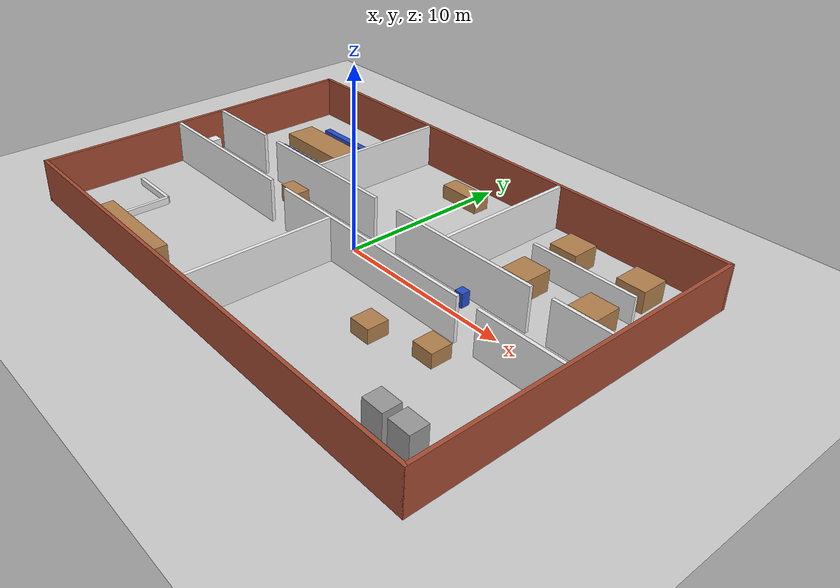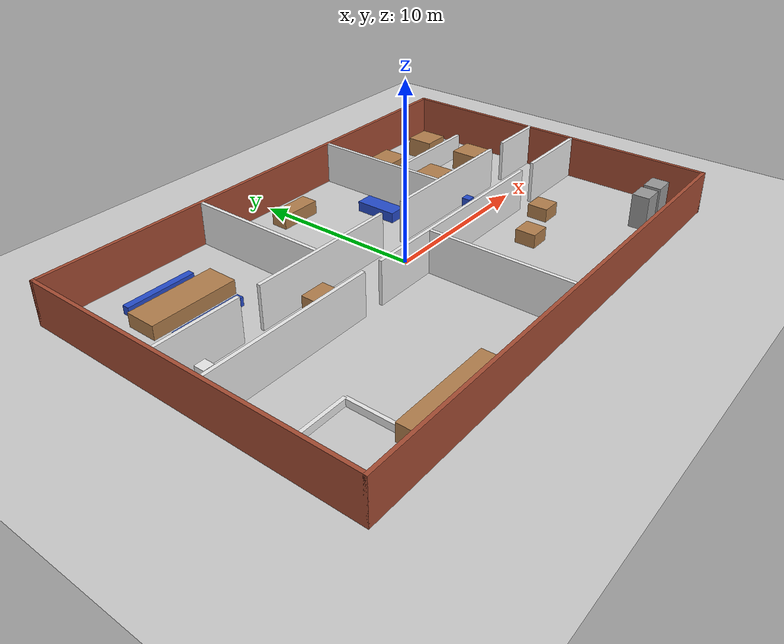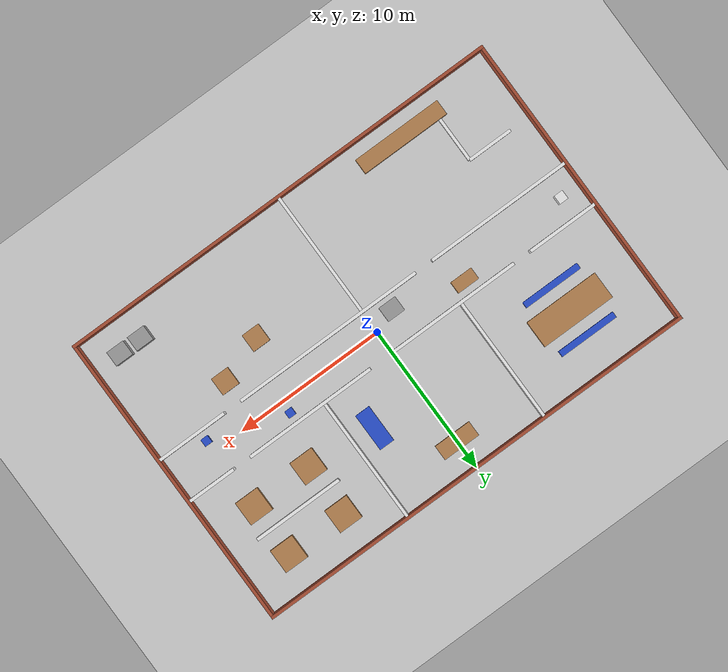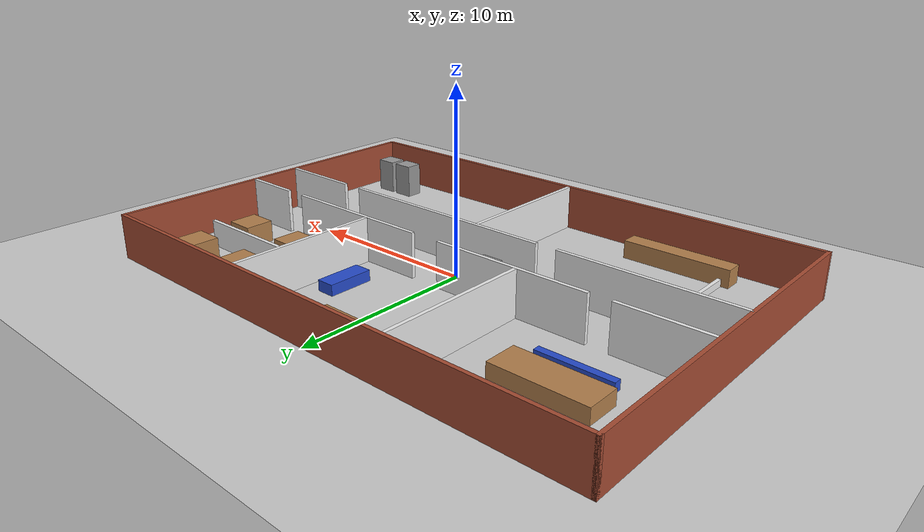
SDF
<?xml version="1.0" ?>
<sdf version="1.6">
  <world name="office_30x20_world">
    <include><uri>model://sun</uri></include>
    <include><uri>model://ground_plane</uri></include>
    <model name="office_building">
      <pose>0 0 0 0 0 0</pose>
      <static>true</static>
      <link name="obj_0">
        <pose>0.000 9.900 1.250 0 0 0</pose>
        <collision name="col_0"><geometry><box><size>30.000 0.200 2.500</size></box></geometry></collision>
        <visual name="vis_0"><geometry><box><size>30.000 0.200 2.500</size></box></geometry><material><script><name>Gazebo/Bricks</name></script></material></visual>
      </link>
      <link name="obj_1">
        <pose>0.000 -9.900 1.250 0 0 0</pose>
        <collision name="col_1"><geometry><box><size>30.000 0.200 2.500</size></box></geometry></collision>
        <visual name="vis_1"><geometry><box><size>30.000 0.200 2.500</size></box></geometry><material><script><name>Gazebo/Bricks</name></script></material></visual>
      </link>
      <link name="obj_2">
        <pose>-14.900 0.000 1.250 0 0 0</pose>
        <collision name="col_2"><geometry><box><size>0.200 20.000 2.500</size></box></geometry></collision>
        <visual name="vis_2"><geometry><box><size>0.200 20.000 2.500</size></box></geometry><material><script><name>Gazebo/Bricks</name></script></material></visual>
      </link>
      <link name="obj_3">
        <pose>14.900 0.000 1.250 0 0 0</pose>
        <collision name="col_3"><geometry><box><size>0.200 20.000 2.500</size></box></geometry></collision>
        <visual name="vis_3"><geometry><box><size>0.200 20.000 2.500</size></box></geometry><material><script><name>Gazebo/Bricks</name></script></material></visual>
      </link>
      <link name="obj_4">
        <pose>-12.500 1.500 1.250 0 0 0</pose>
        <collision name="col_4"><geometry><box><size>4.800 0.200 2.500</size></box></geometry></collision>
        <visual name="vis_4"><geometry><box><size>4.800 0.200 2.500</size></box></geometry><material><script><name>Gazebo/White</name></script></material></visual>
      </link>
      <link name="obj_5">
        <pose>-4.500 1.500 1.250 0 0 0</pose>
        <collision name="col_5"><geometry><box><size>8.800 0.200 2.500</size></box></geometry></collision>
        <visual name="vis_5"><geometry><box><size>8.800 0.200 2.500</size></box></geometry><material><script><name>Gazebo/White</name></script></material></visual>
      </link>
      <link name="obj_6">
        <pose>6.000 1.500 1.250 0 0 0</pose>
        <collision name="col_6"><geometry><box><size>8.800 0.200 2.500</size></box></geometry></collision>
        <visual name="vis_6"><geometry><box><size>8.800 0.200 2.500</size></box></geometry><material><script><name>Gazebo/White</name></script></material></visual>
      </link>
      <link name="obj_7">
        <pose>13.300 1.500 1.250 0 0 0</pose>
        <collision name="col_7"><geometry><box><size>3.400 0.200 2.500</size></box></geometry></collision>
        <visual name="vis_7"><geometry><box><size>3.400 0.200 2.500</size></box></geometry><material><script><name>Gazebo/White</name></script></material></visual>
      </link>
      <link name="obj_8">
        <pose>-10.000 -1.500 1.250 0 0 0</pose>
        <collision name="col_8"><geometry><box><size>9.800 0.200 2.500</size></box></geometry></collision>
        <visual name="vis_8"><geometry><box><size>9.800 0.200 2.500</size></box></geometry><material><script><name>Gazebo/White</name></script></material></visual>
      </link>
      <link name="obj_9">
        <pose>2.500 -1.500 1.250 0 0 0</pose>
        <collision name="col_9"><geometry><box><size>12.800 0.200 2.500</size></box></geometry></collision>
        <visual name="vis_9"><geometry><box><size>12.800 0.200 2.500</size></box></geometry><material><script><name>Gazebo/White</name></script></material></visual>
      </link>
      <link name="obj_10">
        <pose>12.500 -1.500 1.250 0 0 0</pose>
        <collision name="col_10"><geometry><box><size>4.800 0.200 2.500</size></box></geometry></collision>
        <visual name="vis_10"><geometry><box><size>4.800 0.200 2.500</size></box></geometry><material><script><name>Gazebo/White</name></script></material></visual>
      </link>
      <link name="obj_11">
        <pose>-5.000 5.700 1.250 0 0 0</pose>
        <collision name="col_11"><geometry><box><size>0.200 8.200 2.500</size></box></geometry></collision>
        <visual name="vis_11"><geometry><box><size>0.200 8.200 2.500</size></box></geometry><material><script><name>Gazebo/White</name></script></material></visual>
      </link>
      <link name="obj_12">
        <pose>5.000 5.700 1.250 0 0 0</pose>
        <collision name="col_12"><geometry><box><size>0.200 8.200 2.500</size></box></geometry></collision>
        <visual name="vis_12"><geometry><box><size>0.200 8.200 2.500</size></box></geometry><material><script><name>Gazebo/White</name></script></material></visual>
      </link>
      <link name="obj_13">
        <pose>0.000 -5.700 1.250 0 0 0</pose>
        <collision name="col_13"><geometry><box><size>0.200 8.200 2.500</size></box></geometry></collision>
        <visual name="vis_13"><geometry><box><size>0.200 8.200 2.500</size></box></geometry><material><script><name>Gazebo/White</name></script></material></visual>
      </link>
      <link name="obj_14">
        <pose>-10.000 5.700 0.400 0 0 0</pose>
        <collision name="col_14"><geometry><box><size>5.000 1.800 0.800</size></box></geometry></collision>
        <visual name="vis_14"><geometry><box><size>5.000 1.800 0.800</size></box></geometry><material><script><name>Gazebo/Wood</name></script></material></visual>
      </link>
      <link name="obj_15">
        <pose>-10.000 7.500 0.250 0 0 0</pose>
        <collision name="col_15"><geometry><box><size>4.000 0.400 0.500</size></box></geometry></collision>
        <visual name="vis_15"><geometry><box><size>4.000 0.400 0.500</size></box></geometry><material><script><name>Gazebo/Blue</name></script></material></visual>
      </link>
      <link name="obj_16">
        <pose>-10.000 3.900 0.250 0 0 0</pose>
        <collision name="col_16"><geometry><box><size>4.000 0.400 0.500</size></box></geometry></collision>
        <visual name="vis_16"><geometry><box><size>4.000 0.400 0.500</size></box></geometry><material><script><name>Gazebo/Blue</name></script></material></visual>
      </link>
      <link name="obj_17">
        <pose>0.000 8.000 0.400 0 0 0</pose>
        <collision name="col_17"><geometry><box><size>2.500 1.000 0.800</size></box></geometry></collision>
        <visual name="vis_17"><geometry><box><size>2.500 1.000 0.800</size></box></geometry><material><script><name>Gazebo/Wood</name></script></material></visual>
      </link>
      <link name="obj_18">
        <pose>3.500 4.500 0.300 0 0 0</pose>
        <collision name="col_18"><geometry><box><size>1.000 2.500 0.600</size></box></geometry></collision>
        <visual name="vis_18"><geometry><box><size>1.000 2.500 0.600</size></box></geometry><material><script><name>Gazebo/Blue</name></script></material></visual>
      </link>
      <link name="obj_19">
        <pose>8.000 7.500 0.600 0 0 0</pose>
        <collision name="col_19"><geometry><box><size>1.600 1.600 1.200</size></box></geometry></collision>
        <visual name="vis_19"><geometry><box><size>1.600 1.600 1.200</size></box></geometry><material><script><name>Gazebo/Wood</name></script></material></visual>
      </link>
      <link name="obj_20">
        <pose>12.000 7.500 0.600 0 0 0</pose>
        <collision name="col_20"><geometry><box><size>1.600 1.600 1.200</size></box></geometry></collision>
        <visual name="vis_20"><geometry><box><size>1.600 1.600 1.200</size></box></geometry><material><script><name>Gazebo/Wood</name></script></material></visual>
      </link>
      <link name="obj_21">
        <pose>8.000 4.000 0.600 0 0 0</pose>
        <collision name="col_21"><geometry><box><size>1.600 1.600 1.200</size></box></geometry></collision>
        <visual name="vis_21"><geometry><box><size>1.600 1.600 1.200</size></box></geometry><material><script><name>Gazebo/Wood</name></script></material></visual>
      </link>
      <link name="obj_22">
        <pose>12.000 4.000 0.600 0 0 0</pose>
        <collision name="col_22"><geometry><box><size>1.600 1.600 1.200</size></box></geometry></collision>
        <visual name="vis_22"><geometry><box><size>1.600 1.600 1.200</size></box></geometry><material><script><name>Gazebo/Wood</name></script></material></visual>
      </link>
      <link name="obj_23">
        <pose>10.000 5.700 0.750 0 0 0</pose>
        <collision name="col_23"><geometry><box><size>6.000 0.200 1.500</size></box></geometry></collision>
        <visual name="vis_23"><geometry><box><size>6.000 0.200 1.500</size></box></geometry><material><script><name>Gazebo/White</name></script></material></visual>
      </link>
      <link name="obj_24">
        <pose>-8.000 -8.500 0.500 0 0 0</pose>
        <collision name="col_24"><geometry><box><size>6.000 1.000 1.000</size></box></geometry></collision>
        <visual name="vis_24"><geometry><box><size>6.000 1.000 1.000</size></box></geometry><material><script><name>Gazebo/Wood</name></script></material></visual>
      </link>
      <link name="obj_25">
        <pose>-12.000 -5.000 0.200 0 0 0</pose>
        <collision name="col_25"><geometry><box><size>3.000 0.200 0.400</size></box></geometry></collision>
        <visual name="vis_25"><geometry><box><size>3.000 0.200 0.400</size></box></geometry><material><script><name>Gazebo/White</name></script></material></visual>
      </link>
      <link name="obj_26">
        <pose>-10.500 -6.500 0.200 0 0 0</pose>
        <collision name="col_26"><geometry><box><size>0.200 3.000 0.400</size></box></geometry></collision>
        <visual name="vis_26"><geometry><box><size>0.200 3.000 0.400</size></box></geometry><material><script><name>Gazebo/White</name></script></material></visual>
      </link>
      <link name="obj_27">
        <pose>13.000 -8.000 1.000 0 0 0</pose>
        <collision name="col_27"><geometry><box><size>1.200 1.000 2.000</size></box></geometry></collision>
        <visual name="vis_27"><geometry><box><size>1.200 1.000 2.000</size></box></geometry><material><script><name>Gazebo/Grey</name></script></material></visual>
      </link>
      <link name="obj_28">
        <pose>11.500 -8.000 1.000 0 0 0</pose>
        <collision name="col_28"><geometry><box><size>1.200 1.000 2.000</size></box></geometry></collision>
        <visual name="vis_28"><geometry><box><size>1.200 1.000 2.000</size></box></geometry><material><script><name>Gazebo/Grey</name></script></material></visual>
      </link>
      <link name="obj_29">
        <pose>6.000 -4.000 0.400 0 0 0</pose>
        <collision name="col_29"><geometry><box><size>1.200 1.200 0.800</size></box></geometry></collision>
        <visual name="vis_29"><geometry><box><size>1.200 1.200 0.800</size></box></geometry><material><script><name>Gazebo/Wood</name></script></material></visual>
      </link>
      <link name="obj_30">
        <pose>9.000 -3.000 0.400 0 0 0</pose>
        <collision name="col_30"><geometry><box><size>1.200 1.200 0.800</size></box></geometry></collision>
        <visual name="vis_30"><geometry><box><size>1.200 1.200 0.800</size></box></geometry><material><script><name>Gazebo/Wood</name></script></material></visual>
      </link>
      <link name="obj_31">
        <pose>-6.000 0.600 0.500 0 0 0</pose>
        <collision name="col_31"><geometry><box><size>1.500 0.800 1.000</size></box></geometry></collision>
        <visual name="vis_31"><geometry><box><size>1.500 0.800 1.000</size></box></geometry><material><script><name>Gazebo/Wood</name></script></material></visual>
      </link>
      <link name="obj_32">
        <pose>-1.500 -0.600 0.600 0 0 0</pose>
        <collision name="col_32"><geometry><box><size>1.200 1.000 1.200</size></box></geometry></collision>
        <visual name="vis_32"><geometry><box><size>1.200 1.000 1.200</size></box></geometry><material><script><name>Gazebo/Grey</name></script></material></visual>
      </link>
      <link name="obj_33">
        <pose>7.000 0.800 0.400 0 0 0</pose>
        <collision name="col_33"><geometry><box><size>0.500 0.500 0.800</size></box></geometry></collision>
        <visual name="vis_33"><geometry><box><size>0.500 0.500 0.800</size></box></geometry><material><script><name>Gazebo/Blue</name></script></material></visual>
      </link>
      <link name="obj_34">
        <pose>12.000 -0.800 0.400 0 0 0</pose>
        <collision name="col_34"><geometry><box><size>0.500 0.500 0.800</size></box></geometry></collision>
        <visual name="vis_34"><geometry><box><size>0.500 0.500 0.800</size></box></geometry><material><script><name>Gazebo/Blue</name></script></material></visual>
      </link>
      <link name="obj_35">
        <pose>-13.500 0.000 0.750 0 0 0</pose>
        <collision name="col_35"><geometry><box><size>0.600 0.600 1.500</size></box></geometry></collision>
        <visual name="vis_35"><geometry><box><size>0.600 0.600 1.500</size></box></geometry><material><script><name>Gazebo/White</name></script></material></visual>
      </link>
    </model>
  </world>
</sdf>
